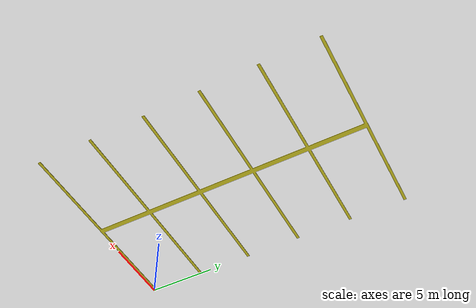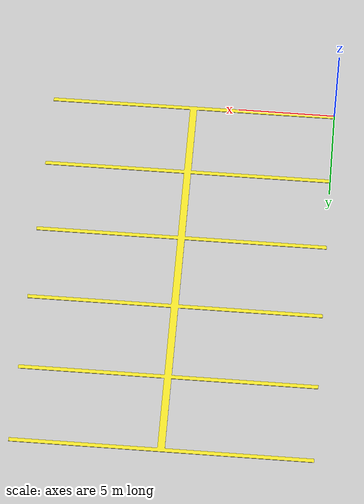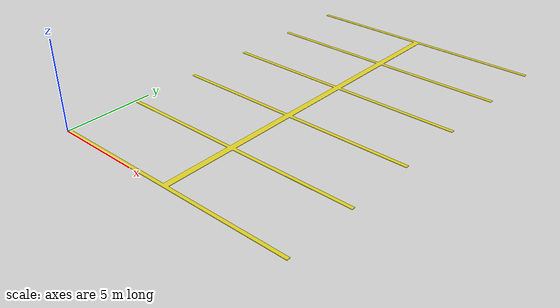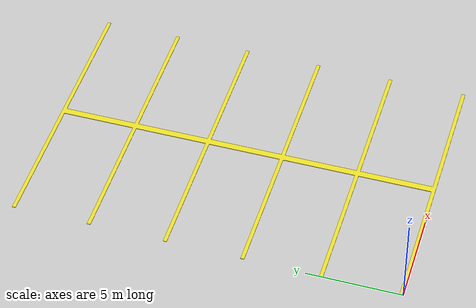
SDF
<?xml version="1.0" ?>
<sdf version="1.4">
  <model name="Parking Lot 2">
    <static>true</static>
    <link name="link">
      <inertial>
        <pose>0 0 0 0 0 0</pose>
        <mass>1</mass>
        <inertia>
          <ixx>1</ixx>
          <iyy>1</iyy>
          <izz>1</izz>
          <ixy>0</ixy>
          <ixz>0</ixz>
        </inertia>
      </inertial>
      <collision name="collision">
        <geometry>
          <mesh>
            <uri>model://parking_lot_2/meshes/parking_lot_2.dae</uri>
            <scale>0.0012 0.0013 0.002</scale>
          </mesh>
        </geometry>
      </collision>

      <visual name="visual">
      <pose>0 0 0 0 0 0</pose>
        <material>
          <script>
            <uri>file://media/materials/scripts/gazebo.material</uri>
            <name>Gazebo/YellowGlow</name>
          </script>
        </material>
        <geometry>
          <mesh>
            <uri>model://parking_lot_2/meshes/parking_lot_2.dae</uri>
            <scale>0.0012 0.0013 0.002</scale>
          </mesh>
        </geometry>
      </visual>
    </link>
  </model>
</sdf>
